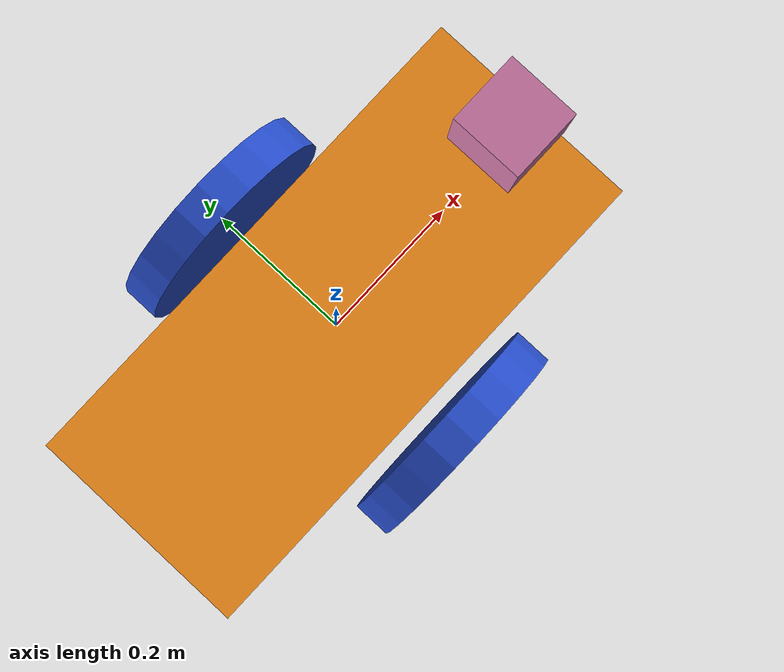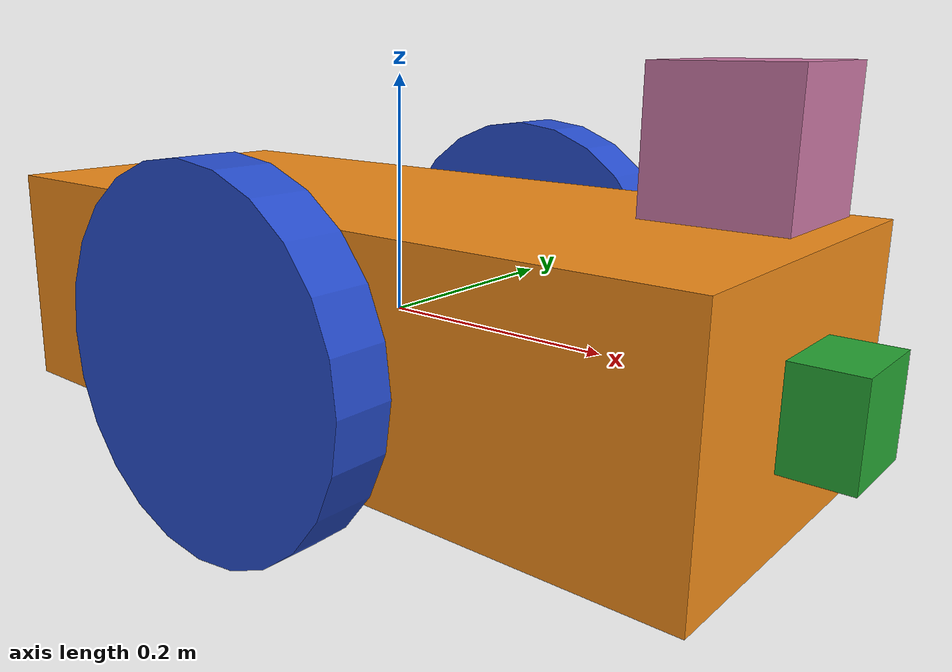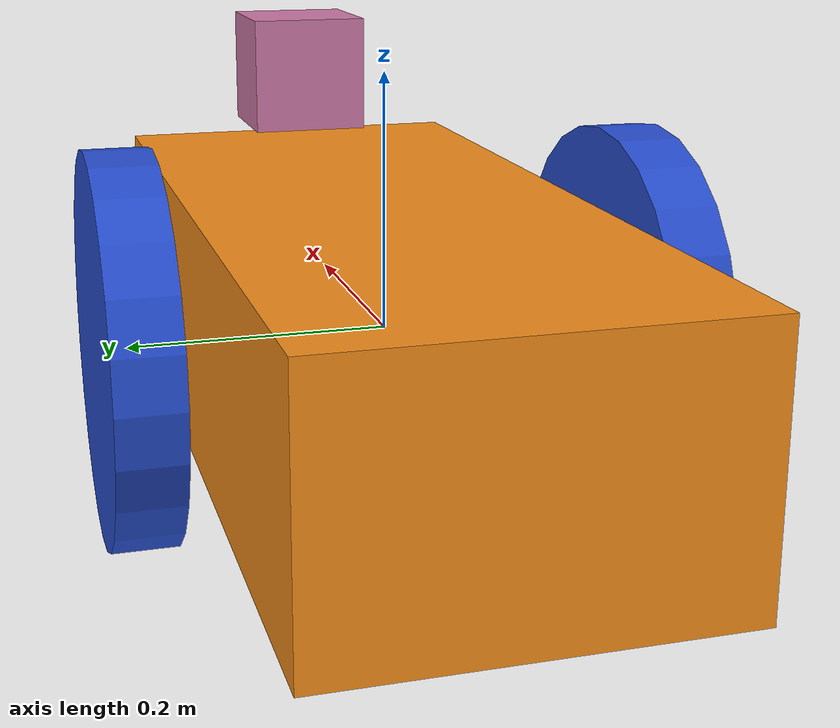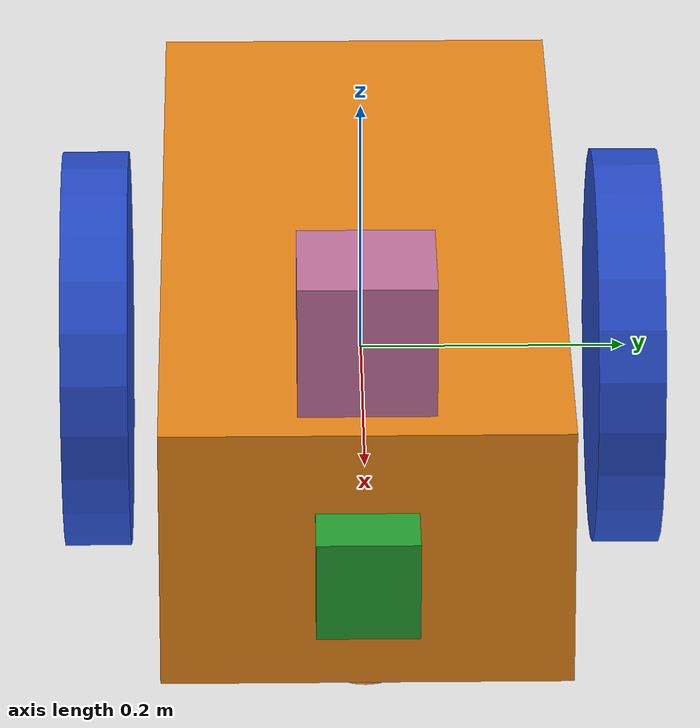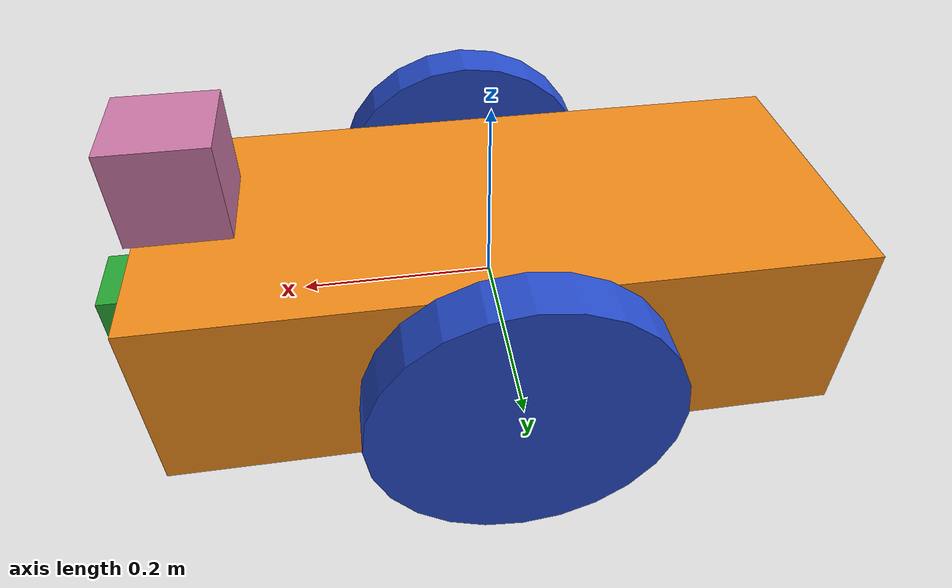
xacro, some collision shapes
<?xml version='1.0'?>

<robot name="my_robot" xmlns:xacro="http://www.ros.org/wiki/xacro">

  <xacro:include filename="$(find my_robot)/urdf/my_robot.gazebo" />

  <link name="robot_footprint"></link>

  <joint name="robot_footprint_joint" type="fixed">
    <origin xyz="0 0 0" rpy="0 0 0" />
    <parent link="robot_footprint"/>
    <child link="chassis" />
  </joint>

<!-- ##########################  CHASSIS LINK ############################-->

  <link name='chassis'>
    <pose>0 0 0.2 0 0 0</pose>

    <inertial>
      <mass value="15.0"/>
      <origin xyz="0.0 0 0" rpy=" 0 0 0"/>
      <inertia
          ixx="0.1" ixy="0" ixz="0"
          iyy="0.1" iyz="0"
          izz="0.1"
      />
    </inertial>

    <collision name='collision'>
      <origin xyz="0 0 0" rpy=" 0 0 0"/>
      <geometry>
        <box size=".7 .3 .2"/>
      </geometry>
    </collision>

    <visual name='chassis_visual'>
      <origin xyz="0 0 0" rpy=" 0 0 0"/>
      <geometry>
        <box size=".7 .3 .2"/>
      </geometry>
    </visual>

    <collision name='back_caster_collision'>
      <origin xyz="-0.25 0 -0.1" rpy=" 0 0 0"/>
      <geometry>
        <sphere radius="0.0499"/>
      </geometry>
    </collision>

    <visual name='back_caster_visual'>
      <origin xyz="-0.25 0 -0.1" rpy=" 0 0 0"/>
      <geometry>
        <sphere radius="0.05"/>
      </geometry>
    </visual>

    <collision name='front_caster_collision'>
      <origin xyz="0.25 0 -0.1" rpy=" 0 0 0"/>
      <geometry>
        <sphere radius="0.0499"/>
      </geometry>
    </collision>

    <visual name='front_caster_visual'>
      <origin xyz="0.25 0 -0.1" rpy=" 0 0 0"/>
      <geometry>
        <sphere radius="0.05"/>
      </geometry>
    </visual>

  </link>

<!-- ##########################  LEFT WHEEL LINK ############################-->

  <link name='left_wheel'>

    <inertial>
      <mass value="5.0"/>
      <origin xyz="0.0 0 0" rpy=" 0 1.5707 1.5707"/>
      <inertia
          ixx="0.1" ixy="0" ixz="0"
          iyy="0.1" iyz="0"
          izz="0.1"
      />
    </inertial>

    <collision name='left_wheel_collision'>
      <origin xyz="0 0 0" rpy=" 0 1.5707 1.5707"/>
      <geometry>
        <cylinder radius="0.15" length="0.05"/>
      </geometry>
    </collision>

    <visual name='left_wheel_visual'>
      <origin xyz="0 0 0" rpy=" 0 1.5707 1.5707"/>
      <geometry>
        <cylinder radius="0.15" length="0.05"/>
      </geometry>
    </visual>

  </link>

<!-- ##########################  LEFT WHEEL JOINT ############################-->

  <joint type="continuous" name="left_wheel_hinge">
    <origin xyz="0 0.2 0" rpy="0 0 0"/>
    <child link="left_wheel"/>
    <parent link="chassis"/>
    <axis xyz="0 1 0" rpy="0 0 0"/>
    <limit effort="10000" velocity="1000"/>
    <dynamics damping="1.0" friction="1.0"/>
  </joint>

<!-- ##########################  RIGHT WHEEL LINK ############################-->

  <link name='right_wheel'>

    <inertial>
      <mass value="5.0"/>
      <origin xyz="0.0 0 0" rpy=" 0 1.5707 1.5707"/>
      <inertia
          ixx="0.1" ixy="0" ixz="0"
          iyy="0.1" iyz="0"
          izz="0.1"
      />
    </inertial>

    <collision name='right_wheel_collision'>
      <origin xyz="0 0 0" rpy=" 0 1.5707 1.5707"/>
      <geometry>
        <cylinder radius="0.15" length="0.05"/>
      </geometry>
    </collision>

    <visual name='right_wheel_visual'>
      <origin xyz="0 0 0" rpy=" 0 1.5707 1.5707"/>
      <geometry>
        <cylinder radius="0.15" length="0.05"/>
      </geometry>
    </visual>

  </link>

<!-- ##########################  RIGHT WHEEL JOINT ############################-->

  <joint type="continuous" name="right_wheel_hinge">
    <origin xyz="0 -0.2 0" rpy="0 0 0"/>
    <child link="right_wheel"/>
    <parent link="chassis"/>
    <axis xyz="0 1 0" rpy="0 0 0"/>
    <limit effort="10000" velocity="1000"/>
    <dynamics damping="1.0" friction="1.0"/>
  </joint>

<!-- ##########################  CAMERA LINK  ############################-->

  <link name='camera'>

    <inertial>
      <mass value="0.1"/>
      <origin xyz="0.05 0.05 0.05" rpy="0 0 0 "/>
      <inertia
          ixx="1e-6" ixy="0" ixz="0"
          iyy="1e-6" iyz="0"
          izz="1e-6"
      />
    </inertial>

    <visual name='camera_visual'>
      <origin xyz="0 0 0" rpy=" 0 0 0"/>
      <geometry>
        <box size="0.05 0.075 0.075"/>
      </geometry>
    </visual>

    <collision name='camera_collision'>
      <origin xyz="0 0 0" rpy="0 0 0"/>
      <geometry>
        <box size="0.05 0.075 0.075"/>
      </geometry>
    </collision>

  </link>

<!-- ##########################  CAMERA JOINT ############################-->

  <joint type="fixed" name="camera_joint">
    <origin xyz="0.375 0 0" rpy="0 0 0"/>
    <child link="camera"/>
    <parent link="chassis"/>
    <axis xyz="0 1 0" rpy="0 0 0"/>
  </joint>

<!-- ##########################  CAMERA OPTICAL LINK ############################-->
  <link name="camera_link_optical">
  </link>

<!-- ##########################  CAMERA OPTICAL JOINT ############################-->
  <joint name="camera_optical_joint" type="fixed">
    <origin xyz="0 0 0" rpy="-1.5707 0 -1.5707"/>
    <parent link="camera"/>
    <child link="camera_link_optical"/>
  </joint>

<!-- ##########################  HOKUYO LIDAR LINK  ############################-->

  <link name='hokuyo'>

    <inertial>
      <mass value="1e-5"/>
      <origin xyz="0.0 0.0 0.0" rpy="0 0 0 "/>
      <inertia
          ixx="1e-6" ixy="0" ixz="0"
          iyy="1e-6" iyz="0"
          izz="1e-6"
      />
    </inertial>

    <visual name='hokuyo_visual'>
      <origin xyz="0 0 0" rpy=" 0 0 0"/>
      <geometry>
        <mesh filename="package://my_robot/meshes/hokuyo.dae"/>
      </geometry>
    </visual>

    <collision name='hokuyo_collision'>
      <origin xyz="0 0 0" rpy="0 0 0"/>
      <geometry>
        <box size="0.1 0.1 0.1"/>
      </geometry>
    </collision>

  </link>

 <!-- ##########################  HOKUYO LIDAR JOINT  ############################-->

  <joint type="fixed" name="hokuyo_joint">
    <origin xyz="0.3 0 0.165" rpy="0 0 0"/>
    <child link="hokuyo"/>
    <parent link="chassis"/>
    <axis xyz="0 1 0" rpy="0 0 0"/>
  </joint>

<!-- ##########################  COLOR  ############################-->

<gazebo reference="left_wheel">
    <material>Gazebo/Blue</material>
</gazebo>

<gazebo reference="right_wheel">
    <material>Gazebo/Blue</material>
</gazebo>

<gazebo reference="camera">
    <material>Gazebo/GreenGlow</material>
</gazebo>

<gazebo reference="chassis">
    <material>Gazebo/Orange</material>
</gazebo>

<!-- ##########################  COLOR  ############################-->

</robot>
